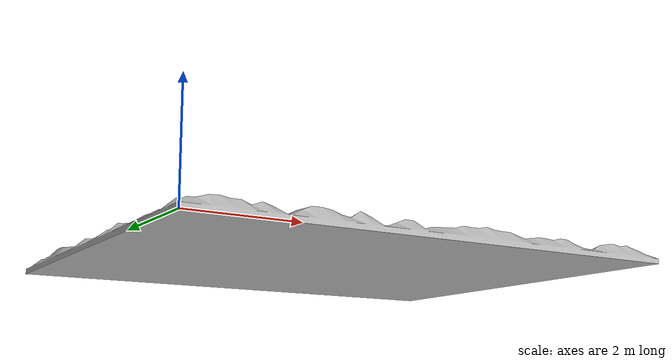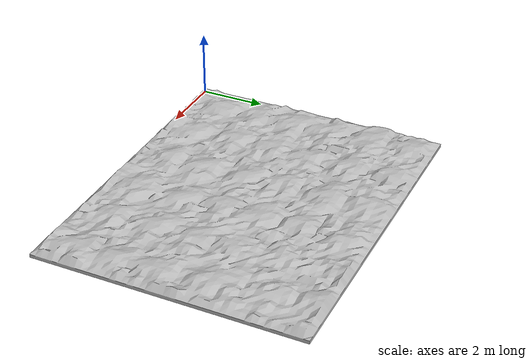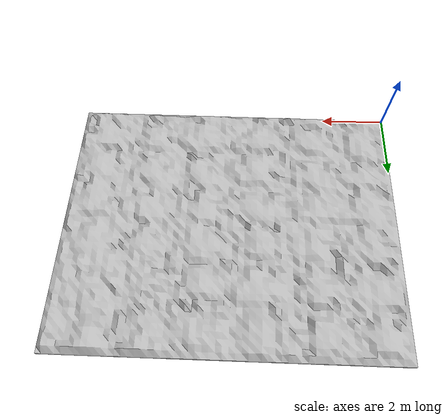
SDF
<?xml version="1.0"?>
<sdf version="1.6">
  <model name="rough_25cm">
    <static>true</static>
    <link name="body">
      <visual name="visual">
        <geometry>
          <mesh>
            <uri>meshes/rough_25cm.stl</uri>
          </mesh>
        </geometry>
      </visual>
      <collision name="collision">
        <geometry>
          <mesh>
            <uri>meshes/rough_25cm.stl</uri>
          </mesh>
        </geometry>
        <surface>
          <friction>
            <ode>
              <mu>100</mu>
              <mu2>100</mu2>
            </ode>
          </friction>
        </surface>
      </collision>
    </link>
  </model>
</sdf>
